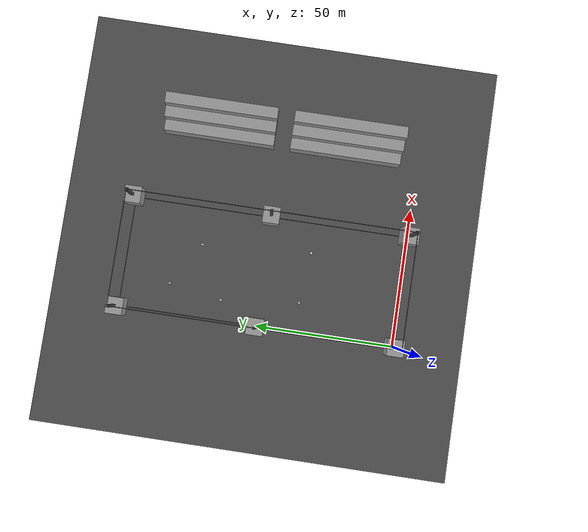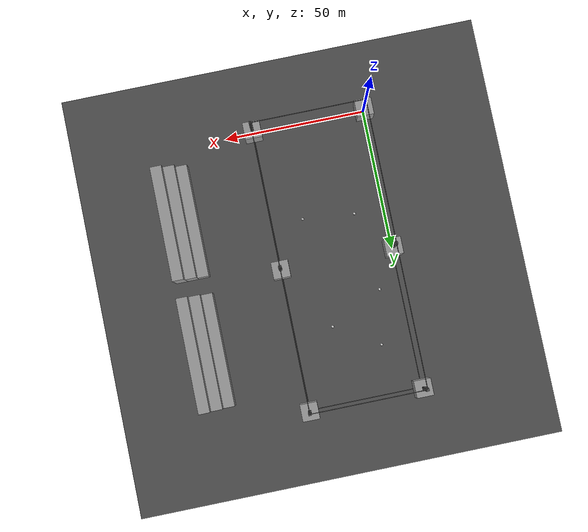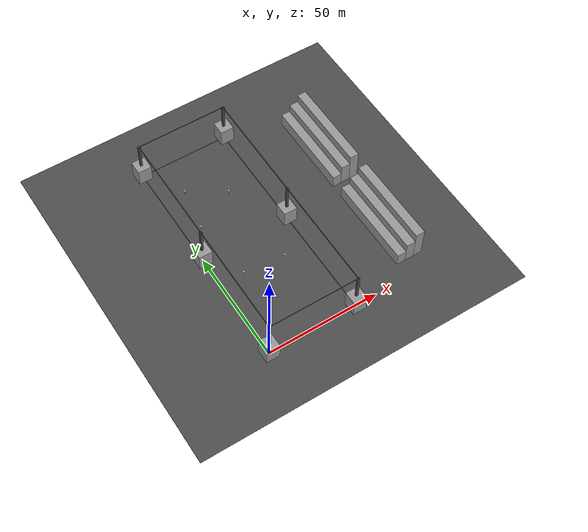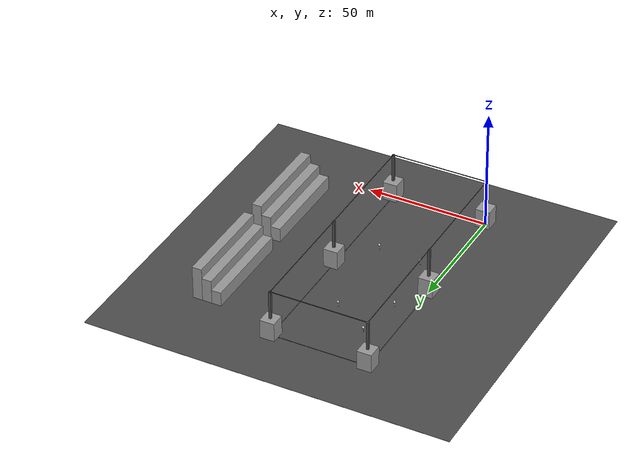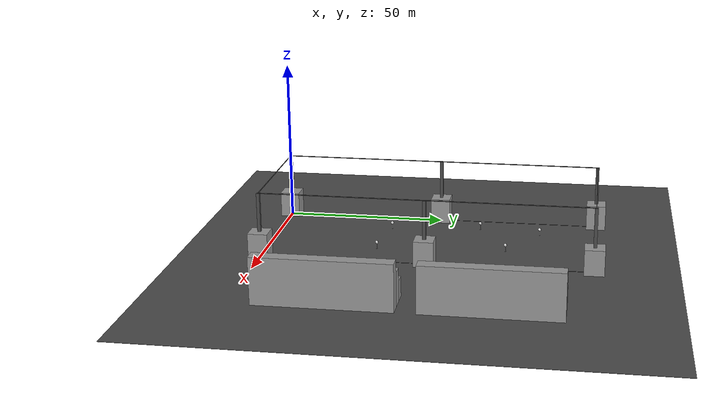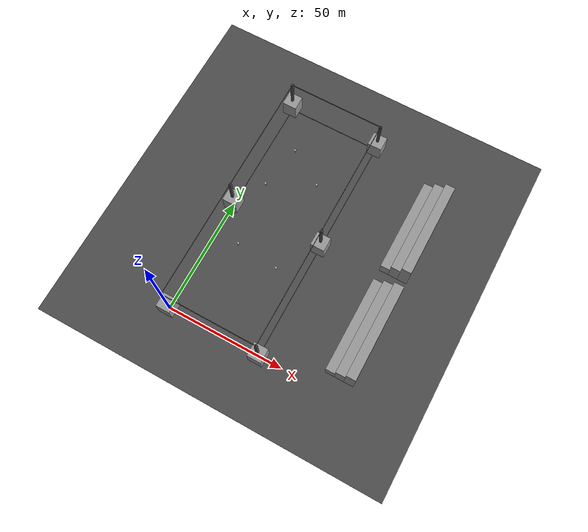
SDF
<?xml version="1.0" ?>
<sdf version="1.5">
  <world name="default">

    <gui fullscreen='0'>
      <camera name='user_camera'>
        <pose>-61.3 -26.2 72 0 0.53 0.62</pose>
      </camera>
    </gui>

    <scene>
      <grid>false</grid>
      <origin_visual>false</origin_visual>
    </scene>

    <!-- A global light source -->
    <include>
      <uri>model://sun</uri>
    </include>
    <!-- A ground plane -->
    <include>
      <uri>model://mbzirc_plane</uri>
      <name>mbzirc_plane</name>
	  <pose> 30.0 50.0 0.1 0 0 0 </pose>
    </include>

    <include>
      <uri>model://mbzirc_balloon</uri>
      <name>mbzirc_ballon_1</name>
      <pose> 28.9 33.7 0.05 0 0 0</pose>
    </include>
    <include>
      <uri>model://mbzirc_balloon</uri>
      <name>mbzirc_ballon_2</name>
	  <pose> 26.2 73.0 0.05 0 0 0</pose>
    </include>
    <include>
      <uri>model://mbzirc_balloon</uri>
      <name>mbzirc_ballon_3</name>
	  <pose> 10.7 82.6 0.05 0 0 0</pose>
    </include>
    <include>
      <uri>model://mbzirc_balloon</uri>
      <name>mbzirc_ballon_4</name>
	  <pose> 7.4 63.5 0.05 0 0 0</pose>
    </include>
    <include>
      <uri>model://mbzirc_balloon</uri>
      <name>mbzirc_ballon_5</name>
	  <pose> 10.6 35.5 0.05 0 0 0</pose>
    </include>

    <include>
      <uri>model://mbzirc_stand_6</uri>
      <name>mbzirc_stand_6_1</name>
	  <pose> 67.0 73.0 0.1 0 0 0</pose>
    </include>
    <include>
      <uri>model://mbzirc_stand_10</uri>
      <name>mbzirc_stand_10_1</name>
	  <pose> 71.0 73.0 0.1 0 0 0</pose>
    </include>
    <include>
      <uri>model://mbzirc_stand_14</uri>
      <name>mbzirc_stand_14_1</name>
	  <pose> 75.0 73.0 0.1 0 0 0</pose>
    </include>

    <include>
      <uri>model://mbzirc_stand_6</uri>
      <name>mbzirc_stand_6_2</name>
	  <pose> 67.0 27.0 0.1 0 0 0</pose>
    </include>
    <include>
      <uri>model://mbzirc_stand_10</uri>
      <name>mbzirc_stand_10_2</name>
	  <pose> 71.0 27.0 0.1 0 0 0</pose>
    </include>
    <include>
      <uri>model://mbzirc_stand_14</uri>
      <name>mbzirc_stand_14_2</name>
	  <pose> 75.0 27.0 0.1 0 0 0</pose>
    </include>

    <!-- Starting Point -->

    <!-- Landing Point -->

    <!-- bin -->

    <include>
      <uri>model://mbzirc_roof_100</uri>
      <name>mbzirc_roof_1</name>
	  <pose> 0.0 50.0 20 1.57079 0 0</pose>
    </include>

    <include>
      <uri>model://mbzirc_roof_100</uri>
      <name>mbzirc_roof_2</name>
	  <pose> 40.0 50.0 20 1.57079 0 0</pose>
    </include>

    <include>
      <uri>model://mbzirc_roof_40</uri>
      <name>mbzirc_roof_3</name>
	  <pose> 20.0 100.0 20 0 1.57079 0 </pose>
    </include>

    <include>
      <uri>model://mbzirc_roof_40</uri>
      <name>mbzirc_roof_4</name>
	  <pose> 20.0 0.0 20 0 1.57079 0 </pose>
    </include>

    <include>
      <uri>model://mbzirc_roof_100</uri>
      <name>mbzirc_roof_5</name>
	  <pose> 0.0 50.0 0.1 1.57079 0 0</pose>
    </include>

    <include>
      <uri>model://mbzirc_roof_100</uri>
      <name>mbzirc_roof_6</name>
	  <pose> 40.0 50.0 0.1 1.57079 0 0</pose>
    </include>

    <include>
      <uri>model://mbzirc_roof_40</uri>
      <name>mbzirc_roof_7</name>
	  <pose> 20.0 100.0 0.1 0 1.57079 0 </pose>
    </include>

    <include>
      <uri>model://mbzirc_roof_40</uri>
      <name>mbzirc_roof_8</name>
	  <pose> 20.0 0.0 0.1 0 1.57079 0 </pose>
    </include>

    <include>
      <uri>model://mbzirc_basebox</uri>
      <name>mbzirc_basebox_1</name>
	  <pose> 0.0 0.0 4.0 0 0 0 </pose>
    </include>
    <include>
      <uri>model://mbzirc_basebox</uri>
      <name>mbzirc_basebox_2</name>
	  <pose> 40.0 0.0 4.0 0 0 0 </pose>
    </include>
    <include>
      <uri>model://mbzirc_basebox</uri>
      <name>mbzirc_basebox_3</name>
	  <pose> 40.0 100.0 4.0 0 0 0 </pose>
    </include>
    <include>
      <uri>model://mbzirc_basebox</uri>
      <name>mbzirc_basebox_4</name>
	  <pose> 0.0 100.0 4.0 0 0 0 </pose>
    </include>
    <include>
      <uri>model://mbzirc_basebox</uri>
      <name>mbzirc_basebox_5</name>
	  <pose> 40.0 50.0 4.0 0 0 0 </pose>
    </include>
    <include>
      <uri>model://mbzirc_basebox</uri>
      <name>mbzirc_basebox_6</name>
	  <pose> 0.0 50.0 4.0 0 0 0 </pose>
    </include>

    <include>
      <uri>model://mbzirc_column</uri>
      <name>mbzirc_column_1</name>
	  <pose> 0.0 0.0 10.0 0 0 0 </pose>
    </include>
    <include>
      <uri>model://mbzirc_column</uri>
      <name>mbzirc_column_2</name>
	  <pose> 40.0 100.0 10.0 0 0 0 </pose>
    </include>
    <include>
      <uri>model://mbzirc_column</uri>
      <name>mbzirc_column_3</name>
	  <pose> 40.0 0.0 10.0 0 0 0 </pose>
    </include>
    <include>
      <uri>model://mbzirc_column</uri>
      <name>mbzirc_column_4</name>
	  <pose> 0.0 100.0 10.0 0 0 0 </pose>
    </include>

    <include>
      <uri>model://mbzirc_column</uri>
      <name>mbzirc_column_5</name>
	  <pose> 40.0 50.0 10.0 0 0 0 </pose>
    </include>
    <include>
      <uri>model://mbzirc_column</uri>
      <name>mbzirc_column_6</name>
	  <pose> 0.0 50.0 10.0 0 0 0 </pose>
    </include>

    <physics name='default_physics' default='0' type='ode'>
      <gravity>0 0 -9.8066</gravity>
      <ode>
        <solver>
          <type>quick</type>
          <iters>10</iters>
          <sor>1.3</sor>
          <use_dynamic_moi_rescaling>0</use_dynamic_moi_rescaling>
        </solver>
        <constraints>
          <cfm>0</cfm>
          <erp>0.2</erp>
          <contact_max_correcting_vel>100</contact_max_correcting_vel>
          <contact_surface_layer>0.001</contact_surface_layer>
        </constraints>
      </ode>
      <max_step_size>0.004</max_step_size>
      <real_time_factor>1</real_time_factor>
      <real_time_update_rate>250</real_time_update_rate>
      <magnetic_field>6.0e-6 2.3e-5 -4.2e-5</magnetic_field>
    </physics>
  </world>
</sdf>

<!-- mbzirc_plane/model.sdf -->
<sdf version="1.5">
  <model name="mbzirc_plane">
    <static>true</static>
    <link name="link">
      <collision name="collision">
        <geometry>
          <box>
            <size>150 150 .1</size>
          </box>
        </geometry>
      </collision>
      <visual name="visual">
        <cast_shadows>false</cast_shadows>
        <geometry>
          <box>
            <size>150 150 .1</size>
          </box>
        </geometry>
        <material>
          <script>
            <uri>model://mbzirc_plane/materials/scripts</uri>
            <uri>model://mbzirc_plane/materials/textures</uri>
            <name>vrc/asphalt</name>
          </script>
        </material>
      </visual>
    </link>
  </model>
</sdf>

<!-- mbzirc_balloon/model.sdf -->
<sdf version="1.5">
  <model name="mbzirc_balloon">
    <link name="link">
	<pose frame=''>0.0 0 0.1 0 0.0 0</pose>
      <inertial>
        <mass>0.001</mass>
        <inertia>
          <ixx>0.000001</ixx>
          <ixy>0</ixy>
          <ixz>0</ixz>
          <iyy>0.000001</iyy>
          <iyz>0</iyz>
          <izz>0.00977</izz>
        </inertia>
      </inertial>
      <collision name="collision">
        <pose>0 0 2.0 0 0 0</pose>
        <geometry>
          <sphere>
            <radius>0.45</radius>
          </sphere>
        </geometry>
      </collision>
      <visual name="visual">
        <pose>0 0 2.0 0 0 0</pose>
        <geometry>
          <sphere>
            <radius>0.45</radius>
          </sphere>
        </geometry>
        <material>
          <script>
            <name>Gazebo/White</name>
            <uri>file://media/materials/scripts/gazebo.material</uri>
          </script>
        </material>
      </visual>
      <collision name="collision_bar">
        <pose>0 0 1.0 0 0 0</pose>
        <geometry>
          <box>
            <size>0.05 0.05 2.0</size>
          </box>
        </geometry>
      </collision>
      <visual name="visual_bar">
        <pose>0 0 1.0 0 0 0</pose>
        <geometry>
          <box>
            <size>0.05 0.05 2.0</size>
          </box>
        </geometry>
        <material>
          <script>
            <name>Gazebo/Grey</name>
            <uri>file://media/materials/scripts/gazebo.material</uri>
          </script>
        </material>
      </visual>
      <collision name="collision_base">
        <pose>0 0 0.01 0 0 0</pose>
        <geometry>
          <box>
            <size>0.4 0.4 0.02</size>
          </box>
        </geometry>
      </collision>
      <visual name="visual_base">
        <pose>0 0 0.01 0 0 0</pose>
        <geometry>
          <box>
            <size>0.4 0.4 0.02</size>
          </box>
        </geometry>
        <material>
          <script>
            <name>Gazebo/Grey</name>
            <uri>file://media/materials/scripts/gazebo.material</uri>
          </script>
        </material>
      </visual>
    </link>
  </model>
</sdf>

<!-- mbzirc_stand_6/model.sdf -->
<sdf version="1.5">
  <model name="mbzirc_stand_6">
    <static>true</static>
    <link name="link">
      <pose>0 0 3.0 0 0 0</pose>
      <collision name="collision">
        <geometry>
          <box>
            <size>4 40 6</size>
          </box>
        </geometry>
      </collision>
      <visual name="visual">
        <cast_shadows>false</cast_shadows>
        <geometry>
          <box>
            <size>4 40 6</size>
          </box>
        </geometry>
        <material>
          <script>
            <name>Gazebo/Grey</name>
            <uri>file://media/materials/scripts/gazebo.material</uri>
          </script>
        </material>
      </visual>
    </link>
  </model>
</sdf>

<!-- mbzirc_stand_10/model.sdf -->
<sdf version="1.5">
  <model name="mbzirc_stand_10">
    <static>true</static>
    <link name="link">
      <pose>0 0 5.0 0 0 0</pose>
      <collision name="collision">
        <geometry>
          <box>
            <size>4 40 10</size>
          </box>
        </geometry>
      </collision>
      <visual name="visual">
        <cast_shadows>false</cast_shadows>
        <geometry>
          <box>
            <size>4 40 10</size>
          </box>
        </geometry>
        <material>
          <script>
            <name>Gazebo/Grey</name>
            <uri>file://media/materials/scripts/gazebo.material</uri>
          </script>
        </material>
      </visual>
    </link>
  </model>
</sdf>

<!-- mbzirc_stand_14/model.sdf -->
<sdf version="1.5">
  <model name="mbzirc_stand_14">
    <static>true</static>
    <link name="link">
      <pose>0 0 7.0 0 0 0</pose>
      <collision name="collision">
        <geometry>
          <box>
            <size>4 40 14</size>
          </box>
        </geometry>
      </collision>
      <visual name="visual">
        <cast_shadows>false</cast_shadows>
        <geometry>
          <box>
            <size>4 40 14</size>
          </box>
        </geometry>
        <material>
          <script>
            <name>Gazebo/Grey</name>
            <uri>file://media/materials/scripts/gazebo.material</uri>
          </script>
        </material>
      </visual>
    </link>
  </model>
</sdf>

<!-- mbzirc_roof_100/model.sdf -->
<sdf version="1.5">
  <model name="mbzirc_roof_100">
    <static>true</static>
    <link name="link">
	<pose frame=''>0.0 0 0.25 0 0.0 0</pose>
      <collision name="collision">
        <geometry>
          <box>
            <size>0.2 0.2 100</size>
          </box>
        </geometry>
      </collision>
      <visual name="visual">
        <cast_shadows>false</cast_shadows>
        <geometry>
          <box>
            <size>0.2 0.2 100</size>
          </box>
        </geometry>
        <material>
          <script>
            <name>Gazebo/DarkGrey</name>
            <uri>file://media/materials/scripts/gazebo.material</uri>
          </script>
        </material>
      </visual>
    </link>
  </model>
</sdf>

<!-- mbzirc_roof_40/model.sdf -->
<sdf version="1.5">
  <model name="mbzirc_roof_40">
    <static>true</static>
    <link name="link">
	<pose frame=''>0.0 0 0.25 0 0.0 0</pose>
      <collision name="collision">
        <geometry>
          <box>
            <size>0.2 0.2 40</size>
          </box>
        </geometry>
      </collision>
      <visual name="visual">
        <cast_shadows>false</cast_shadows>
        <geometry>
          <box>
            <size>0.2 0.2 40</size>
          </box>
        </geometry>
        <material>
          <script>
            <name>Gazebo/DarkGrey</name>
            <uri>file://media/materials/scripts/gazebo.material</uri>
          </script>
        </material>
      </visual>
    </link>
  </model>
</sdf>

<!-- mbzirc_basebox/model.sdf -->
<sdf version="1.5">
  <model name="mbzirc_basebox">
    <static>true</static>
    <link name="link">
      <collision name="collision">
        <geometry>
          <box>
            <size>6 6 8</size>
          </box>
        </geometry>
      </collision>
      <visual name="visual">
        <cast_shadows>false</cast_shadows>
        <geometry>
          <box>
            <size>6 6 8</size>
          </box>
        </geometry>
        <material>
          <script>
            <name>Gazebo/Grey</name>
            <uri>file://media/materials/scripts/gazebo.material</uri>
          </script>
        </material>
      </visual>
    </link>
  </model>
</sdf>

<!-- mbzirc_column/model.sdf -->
<sdf version="1.5">
  <model name="mbzirc_column">
    <static>true</static>
    <link name="link">
      <collision name="collision">
        <geometry>
          <box>
            <size>1 1 20</size>
          </box>
        </geometry>
      </collision>
      <visual name="visual">
        <cast_shadows>false</cast_shadows>
        <geometry>
          <box>
            <size>1 1 20</size>
          </box>
        </geometry>
        <material>
          <script>
            <name>Gazebo/DarkGrey</name>
            <uri>file://media/materials/scripts/gazebo.material</uri>
          </script>
        </material>
      </visual>
    </link>
  </model>
</sdf>
